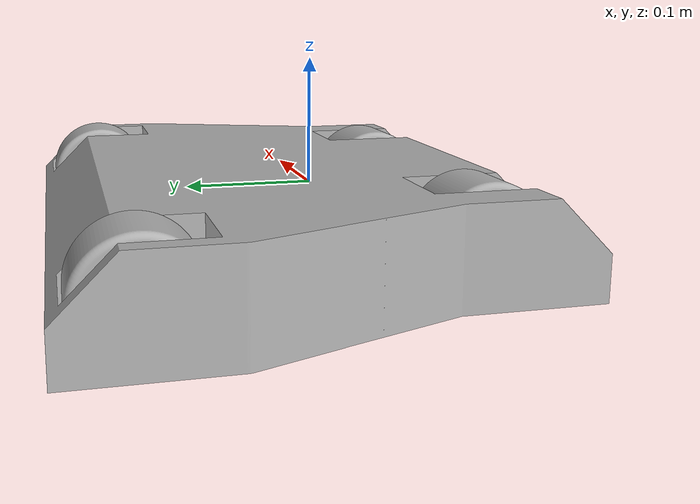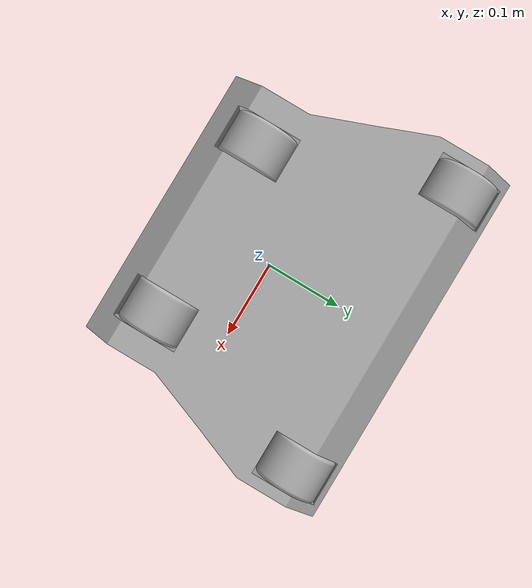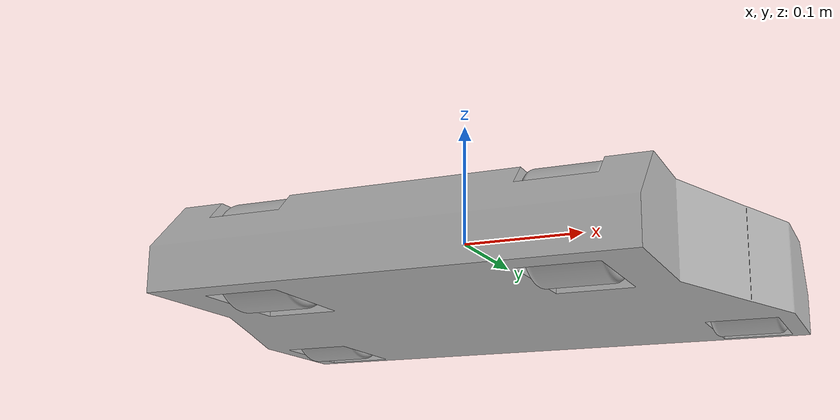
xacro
<?xml version="1.0" ?>
<robot name="arche_urdf" xmlns:xacro="http://www.ros.org/wiki/xacro">

  <xacro:include filename="$(find arche_urdf_description)/urdf/materials.xacro" />
  <xacro:include filename="$(find arche_urdf_description)/urdf/arche_urdf.gazebo" />
  <link name="base_link">
    <inertial>
      <origin xyz="-2.7674005377574403e-14 0.03723621042929538 -0.020468098943149545" rpy="0 0 0"/>
      <mass value="30"/>
      <inertia ixx="0.255196" iyy="0.382972" izz="0.614376" ixy="0.0" iyz="-3.2e-05" ixz="0.0"/>
    </inertial>
    <visual>
      <origin xyz="0 0 0" rpy="0 0 0"/>
      <geometry>
        <mesh filename="package://arche_urdf_description/meshes/base_link.stl" scale="0.001 0.001 0.001"/>
      </geometry>
      <material name="silver"/>
    </visual>
    <collision>
      <origin xyz="0 0 0" rpy="0 0 0"/>
      <geometry>
        <mesh filename="package://arche_urdf_description/meshes/base_link.stl" scale="0.001 0.001 0.001"/>
      </geometry>
    </collision>
  </link>

  <link name="wheel_1">
    <inertial>
      <origin xyz="0.030000000000093355 7.337118966554979e-08 1.5598782084763618e-07" rpy="0 0 0"/>
      <mass value="0.8"/>
      <inertia ixx="0.002376" iyy="0.001972" izz="0.001972" ixy="0.0" iyz="-0.0" ixz="0.0"/>
    </inertial>
    <visual>
      <origin xyz="-0.0916 0.090246 0.018979" rpy="0 0 0"/>
      <geometry>
        <mesh filename="package://arche_urdf_description/meshes/wheel_1.stl" scale="0.001 0.001 0.001"/>
      </geometry>
      <material name="silver"/>
    </visual>
    <collision>
      <origin xyz="-0.0916 0.090246 0.018979" rpy="0 0 0"/>
      <geometry>
        <mesh filename="package://arche_urdf_description/meshes/wheel_1.stl" scale="0.001 0.001 0.001"/>
      </geometry>
    </collision>
  </link>

  <link name="wheel_3">
    <inertial>
      <origin xyz="0.030000000000044935 7.337118876349358e-08 1.5598781887699031e-07" rpy="0 0 0"/>
      <mass value="0.8"/>
      <inertia ixx="0.002376" iyy="0.001972" izz="0.001972" ixy="0.0" iyz="0.0" ixz="0.0"/>
    </inertial>
    <visual>
      <origin xyz="-0.1695 -0.157754 0.018979" rpy="0 0 0"/>
      <geometry>
        <mesh filename="package://arche_urdf_description/meshes/wheel_3.stl" scale="0.001 0.001 0.001"/>
      </geometry>
      <material name="silver"/>
    </visual>
    <collision>
      <origin xyz="-0.1695 -0.157754 0.018979" rpy="0 0 0"/>
      <geometry>
        <mesh filename="package://arche_urdf_description/meshes/wheel_3.stl" scale="0.001 0.001 0.001"/>
      </geometry>
    </collision>
  </link>

  <link name="wheel_4">
    <inertial>
      <origin xyz="-0.030000000000044935 7.337118887451588e-08 1.5598781892556257e-07" rpy="0 0 0"/>
      <mass value="0.8"/>
      <inertia ixx="0.002376" iyy="0.001972" izz="0.001972" ixy="-0.0" iyz="-0.0" ixz="0.0"/>
    </inertial>
    <visual>
      <origin xyz="0.1695 -0.157754 0.018979" rpy="0 0 0"/>
      <geometry>
        <mesh filename="package://arche_urdf_description/meshes/wheel_4.stl" scale="0.001 0.001 0.001"/>
      </geometry>
      <material name="silver"/>
    </visual>
    <collision>
      <origin xyz="0.1695 -0.157754 0.018979" rpy="0 0 0"/>
      <geometry>
        <mesh filename="package://arche_urdf_description/meshes/wheel_4.stl" scale="0.001 0.001 0.001"/>
      </geometry>
    </collision>
  </link>

  <link name="wheel_2">
    <inertial>
      <origin xyz="-0.030000000000093355 7.337118966554979e-08 1.559878208858001e-07" rpy="0 0 0"/>
      <mass value="0.8"/>
      <inertia ixx="0.002376" iyy="0.001972" izz="0.001972" ixy="0.0" iyz="-0.0" ixz="0.0"/>
    </inertial>
    <visual>
      <origin xyz="0.0916 0.090246 0.018979" rpy="0 0 0"/>
      <geometry>
        <mesh filename="package://arche_urdf_description/meshes/wheel_2.stl" scale="0.001 0.001 0.001"/>
      </geometry>
      <material name="silver"/>
    </visual>
    <collision>
      <origin xyz="0.0916 0.090246 0.018979" rpy="0 0 0"/>
      <geometry>
        <mesh filename="package://arche_urdf_description/meshes/wheel_2.stl" scale="0.001 0.001 0.001"/>
      </geometry>
    </collision>
  </link>

  <!-- Wheel Joints -->
  <joint name="wheel_1_joint" type="continuous">
    <origin xyz="0.0916 -0.0902 -0.0189" rpy="0 0 0"/>
    <parent link="base_link"/>
    <child link="wheel_1"/>
    <axis xyz="1.0 0.0 0.0"/>
  </joint>

  <joint name="wheel_3_joint" type="continuous">
    <origin xyz="0.1695 0.1578 -0.0189" rpy="0 0 0"/>
    <parent link="base_link"/>
    <child link="wheel_3"/>
    <axis xyz="1.0 0.0 0.0"/>
  </joint>

  <joint name="wheel_4_joint" type="continuous">
    <origin xyz="-0.1695 0.1578 -0.0189" rpy="0 0 0"/>
    <parent link="base_link"/>
    <child link="wheel_4"/>
    <axis xyz="-1.0 0.0 0.0"/>
  </joint>

  <joint name="wheel_2_joint" type="continuous">
    <origin xyz="-0.0916 -0.0902 -0.0189" rpy="0 0 0"/>
    <parent link="base_link"/>
    <child link="wheel_2"/>
    <axis xyz="-1.0 0.0 0.0"/>
  </joint>

  <gazebo>
    <plugin name="skid_steer_drive_controller" filename="libgazebo_ros_skid_steer_drive.so">
        <updateRate>100.0</updateRate>
        <robotNamespace>/</robotNamespace>
        <leftFrontJoint>wheel_1_joint</leftFrontJoint>
        <rightFrontJoint>wheel_2_joint</rightFrontJoint>
        <leftRearJoint>wheel_3_joint</leftRearJoint>
        <rightRearJoint>wheel_4_joint</rightRearJoint>
        <wheelSeparation>0.3</wheelSeparation>
        <wheelDiameter>0.085</wheelDiameter>
        <robotBaseFrame>base_link</robotBaseFrame>
        <torque>30</torque>
        <topicName>cmd_vel</topicName>
        <broadcastTF>true</broadcastTF>
    </plugin>
  </gazebo>

</robot>

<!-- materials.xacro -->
<robot name="arche_urdf" xmlns:xacro="http://www.ros.org/wiki/xacro" >

<material name="silver">
  <color rgba="0.700 0.700 0.700 1.000"/>
</material>

</robot>

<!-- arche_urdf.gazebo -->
<robot name="arche_urdf" xmlns:xacro="http://www.ros.org/wiki/xacro" >

<xacro:property name="body_color" value="Gazebo/Silver" />

<gazebo>
  <plugin name="control" filename="libgazebo_ros_control.so"/>
</gazebo>
<gazebo reference="base_link">
  <material>${body_color}</material>
  <mu1>0.2</mu1>
  <mu2>0.2</mu2>
  <selfCollide>true</selfCollide>
  <gravity>true</gravity>
</gazebo>

<gazebo reference="wheel_1_joint">
  <material>${body_color}</material>
  <mu1>0.2</mu1>
  <mu2>0.2</mu2>
  <selfCollide>true</selfCollide>
</gazebo>

<gazebo reference="wheel_3_joint">
  <material>${body_color}</material>
  <mu1>0.2</mu1>
  <mu2>0.2</mu2>
  <selfCollide>true</selfCollide>
</gazebo>

<gazebo reference="wheel_4_joint">
  <material>${body_color}</material>
  <mu1>0.2</mu1>
  <mu2>0.2</mu2>
  <selfCollide>true</selfCollide>
</gazebo>

<gazebo reference="wheel_2_joint">
  <material>${body_color}</material>
  <mu1>0.2</mu1>
  <mu2>0.2</mu2>
  <selfCollide>true</selfCollide>
</gazebo>

</robot>
